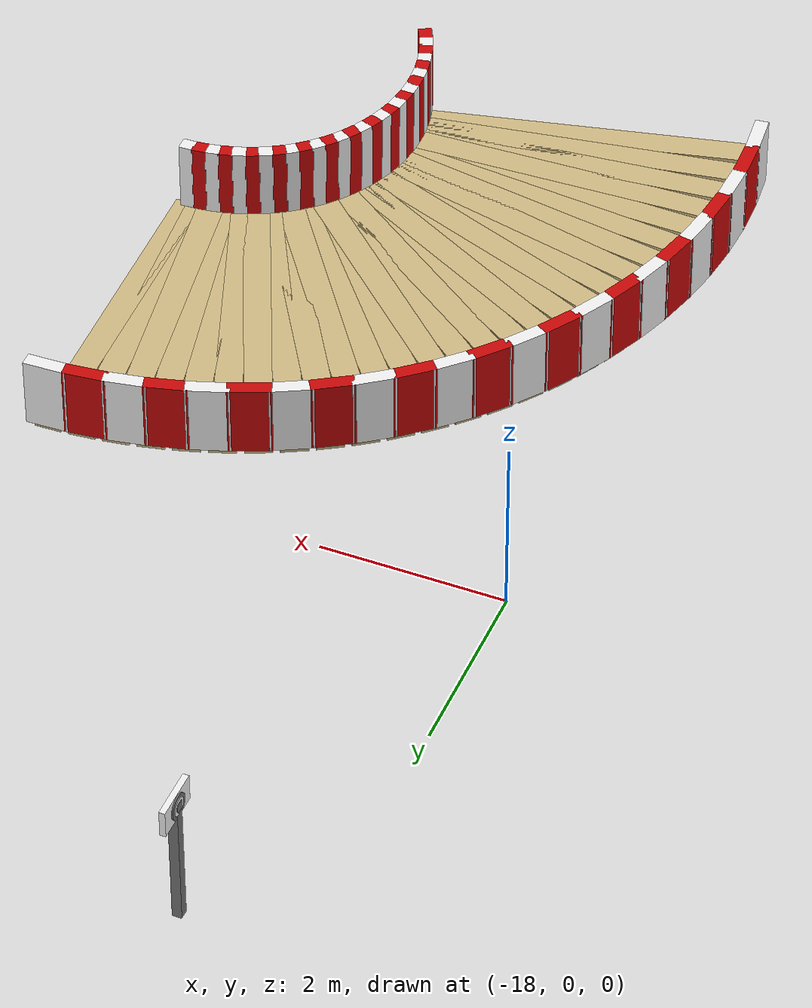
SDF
<sdf version="1.6">
 <world name="evrenos_teknofest_2026">
  <include><uri>model://sun</uri></include>
  <model name="main_course">
   <static>true</static>
   <link name="left_turn_road_20">
    <pose>-16.152000 -7.101500 -0.050000 0.000000 0.000000 -4.483315</pose>
    <collision name="left_turn_road_20_collision">
     <geometry><box><size>0.294500 3.750000 0.100000</size></box></geometry>
    </collision>
    <visual name="left_turn_road_20_visual">
     <geometry><box><size>0.294500 3.750000 0.100000</size></box></geometry>
     <material><ambient>0.82 0.73 0.52 1</ambient><diffuse>0.82 0.73 0.52 1</diffuse></material>
    </visual>
   </link>
   <link name="left_turn_road_21">
    <pose>-16.199875 -6.860875 -0.050000 0.000000 0.000000 -4.548764</pose>
    <collision name="left_turn_road_21_collision">
     <geometry><box><size>0.294500 3.750000 0.100000</size></box></geometry>
    </collision>
    <visual name="left_turn_road_21_visual">
     <geometry><box><size>0.294500 3.750000 0.100000</size></box></geometry>
     <material><ambient>0.82 0.73 0.52 1</ambient><diffuse>0.82 0.73 0.52 1</diffuse></material>
    </visual>
   </link>
   <link name="left_turn_road_22">
    <pose>-16.232000 -6.617625 -0.050000 0.000000 0.000000 -4.614214</pose>
    <collision name="left_turn_road_22_collision">
     <geometry><box><size>0.294500 3.750000 0.100000</size></box></geometry>
    </collision>
    <visual name="left_turn_road_22_visual">
     <geometry><box><size>0.294500 3.750000 0.100000</size></box></geometry>
     <material><ambient>0.82 0.73 0.52 1</ambient><diffuse>0.82 0.73 0.52 1</diffuse></material>
    </visual>
   </link>
   <link name="left_turn_road_23">
    <pose>-16.248000 -6.372750 -0.050000 0.000000 0.000000 -4.679664</pose>
    <collision name="left_turn_road_23_collision">
     <geometry><box><size>0.294500 3.750000 0.100000</size></box></geometry>
    </collision>
    <visual name="left_turn_road_23_visual">
     <geometry><box><size>0.294500 3.750000 0.100000</size></box></geometry>
     <material><ambient>0.82 0.73 0.52 1</ambient><diffuse>0.82 0.73 0.52 1</diffuse></material>
    </visual>
   </link>
   <link name="left_turn_road_24">
    <pose>-16.248000 -6.127250 -0.050000 0.000000 0.000000 -4.745114</pose>
    <collision name="left_turn_road_24_collision">
     <geometry><box><size>0.294500 3.750000 0.100000</size></box></geometry>
    </collision>
    <visual name="left_turn_road_24_visual">
     <geometry><box><size>0.294500 3.750000 0.100000</size></box></geometry>
     <material><ambient>0.82 0.73 0.52 1</ambient><diffuse>0.82 0.73 0.52 1</diffuse></material>
    </visual>
   </link>
   <link name="left_turn_road_25">
    <pose>-16.232000 -5.882375 -0.050000 0.000000 0.000000 -4.810564</pose>
    <collision name="left_turn_road_25_collision">
     <geometry><box><size>0.294500 3.750000 0.100000</size></box></geometry>
    </collision>
    <visual name="left_turn_road_25_visual">
     <geometry><box><size>0.294500 3.750000 0.100000</size></box></geometry>
     <material><ambient>0.82 0.73 0.52 1</ambient><diffuse>0.82 0.73 0.52 1</diffuse></material>
    </visual>
   </link>
   <link name="left_turn_road_26">
    <pose>-16.199875 -5.639125 -0.050000 0.000000 0.000000 -4.876014</pose>
    <collision name="left_turn_road_26_collision">
     <geometry><box><size>0.294500 3.750000 0.100000</size></box></geometry>
    </collision>
    <visual name="left_turn_road_26_visual">
     <geometry><box><size>0.294500 3.750000 0.100000</size></box></geometry>
     <material><ambient>0.82 0.73 0.52 1</ambient><diffuse>0.82 0.73 0.52 1</diffuse></material>
    </visual>
   </link>
   <link name="left_turn_road_27">
    <pose>-16.152000 -5.398500 -0.050000 0.000000 0.000000 -4.941463</pose>
    <collision name="left_turn_road_27_collision">
     <geometry><box><size>0.294500 3.750000 0.100000</size></box></geometry>
    </collision>
    <visual name="left_turn_road_27_visual">
     <geometry><box><size>0.294500 3.750000 0.100000</size></box></geometry>
     <material><ambient>0.82 0.73 0.52 1</ambient><diffuse>0.82 0.73 0.52 1</diffuse></material>
    </visual>
   </link>
   <link name="left_turn_road_28">
    <pose>-16.088500 -5.161375 -0.050000 0.000000 0.000000 -5.006913</pose>
    <collision name="left_turn_road_28_collision">
     <geometry><box><size>0.294500 3.750000 0.100000</size></box></geometry>
    </collision>
    <visual name="left_turn_road_28_visual">
     <geometry><box><size>0.294500 3.750000 0.100000</size></box></geometry>
     <material><ambient>0.82 0.73 0.52 1</ambient><diffuse>0.82 0.73 0.52 1</diffuse></material>
    </visual>
   </link>
   <link name="left_turn_road_29">
    <pose>-16.009625 -4.929000 -0.050000 0.000000 0.000000 -5.072363</pose>
    <collision name="left_turn_road_29_collision">
     <geometry><box><size>0.294500 3.750000 0.100000</size></box></geometry>
    </collision>
    <visual name="left_turn_road_29_visual">
     <geometry><box><size>0.294500 3.750000 0.100000</size></box></geometry>
     <material><ambient>0.82 0.73 0.52 1</ambient><diffuse>0.82 0.73 0.52 1</diffuse></material>
    </visual>
   </link>
   <link name="left_turn_road_30">
    <pose>-15.915750 -4.702375 -0.050000 0.000000 0.000000 -5.137813</pose>
    <collision name="left_turn_road_30_collision">
     <geometry><box><size>0.294500 3.750000 0.100000</size></box></geometry>
    </collision>
    <visual name="left_turn_road_30_visual">
     <geometry><box><size>0.294500 3.750000 0.100000</size></box></geometry>
     <material><ambient>0.82 0.73 0.52 1</ambient><diffuse>0.82 0.73 0.52 1</diffuse></material>
    </visual>
   </link>
   <link name="left_turn_road_31">
    <pose>-15.807250 -4.482250 -0.050000 0.000000 0.000000 -5.203263</pose>
    <collision name="left_turn_road_31_collision">
     <geometry><box><size>0.294500 3.750000 0.100000</size></box></geometry>
    </collision>
    <visual name="left_turn_road_31_visual">
     <geometry><box><size>0.294500 3.750000 0.100000</size></box></geometry>
     <material><ambient>0.82 0.73 0.52 1</ambient><diffuse>0.82 0.73 0.52 1</diffuse></material>
    </visual>
   </link>
   <link name="left_turn_road_32">
    <pose>-15.684500 -4.269750 -0.050000 0.000000 0.000000 -5.268713</pose>
    <collision name="left_turn_road_32_collision">
     <geometry><box><size>0.294500 3.750000 0.100000</size></box></geometry>
    </collision>
    <visual name="left_turn_road_32_visual">
     <geometry><box><size>0.294500 3.750000 0.100000</size></box></geometry>
     <material><ambient>0.82 0.73 0.52 1</ambient><diffuse>0.82 0.73 0.52 1</diffuse></material>
    </visual>
   </link>
   <link name="left_turn_road_33">
    <pose>-15.548125 -4.065750 -0.050000 0.000000 0.000000 -5.334163</pose>
    <collision name="left_turn_road_33_collision">
     <geometry><box><size>0.294500 3.750000 0.100000</size></box></geometry>
    </collision>
    <visual name="left_turn_road_33_visual">
     <geometry><box><size>0.294500 3.750000 0.100000</size></box></geometry>
     <material><ambient>0.82 0.73 0.52 1</ambient><diffuse>0.82 0.73 0.52 1</diffuse></material>
    </visual>
   </link>
   <link name="left_turn_road_34">
    <pose>-15.398750 -3.871000 -0.050000 0.000000 0.000000 -5.399612</pose>
    <collision name="left_turn_road_34_collision">
     <geometry><box><size>0.294500 3.750000 0.100000</size></box></geometry>
    </collision>
    <visual name="left_turn_road_34_visual">
     <geometry><box><size>0.294500 3.750000 0.100000</size></box></geometry>
     <material><ambient>0.82 0.73 0.52 1</ambient><diffuse>0.82 0.73 0.52 1</diffuse></material>
    </visual>
   </link>
   <link name="left_turn_road_35">
    <pose>-15.237000 -3.686500 -0.050000 0.000000 0.000000 -5.465062</pose>
    <collision name="left_turn_road_35_collision">
     <geometry><box><size>0.294500 3.750000 0.100000</size></box></geometry>
    </collision>
    <visual name="left_turn_road_35_visual">
     <geometry><box><size>0.294500 3.750000 0.100000</size></box></geometry>
     <material><ambient>0.82 0.73 0.52 1</ambient><diffuse>0.82 0.73 0.52 1</diffuse></material>
    </visual>
   </link>
   <link name="left_turn_road_36">
    <pose>-15.063500 -3.513000 -0.050000 0.000000 0.000000 -5.530512</pose>
    <collision name="left_turn_road_36_collision">
     <geometry><box><size>0.294500 3.750000 0.100000</size></box></geometry>
    </collision>
    <visual name="left_turn_road_36_visual">
     <geometry><box><size>0.294500 3.750000 0.100000</size></box></geometry>
     <material><ambient>0.82 0.73 0.52 1</ambient><diffuse>0.82 0.73 0.52 1</diffuse></material>
    </visual>
   </link>
   <link name="left_turn_road_37">
    <pose>-14.879000 -3.351250 -0.050000 0.000000 0.000000 -5.595962</pose>
    <collision name="left_turn_road_37_collision">
     <geometry><box><size>0.294500 3.750000 0.100000</size></box></geometry>
    </collision>
    <visual name="left_turn_road_37_visual">
     <geometry><box><size>0.294500 3.750000 0.100000</size></box></geometry>
     <material><ambient>0.82 0.73 0.52 1</ambient><diffuse>0.82 0.73 0.52 1</diffuse></material>
    </visual>
   </link>
   <link name="left_turn_road_38">
    <pose>-14.684250 -3.201875 -0.050000 0.000000 0.000000 -5.661412</pose>
    <collision name="left_turn_road_38_collision">
     <geometry><box><size>0.294500 3.750000 0.100000</size></box></geometry>
    </collision>
    <visual name="left_turn_road_38_visual">
     <geometry><box><size>0.294500 3.750000 0.100000</size></box></geometry>
     <material><ambient>0.82 0.73 0.52 1</ambient><diffuse>0.82 0.73 0.52 1</diffuse></material>
    </visual>
   </link>
   <link name="left_turn_road_39">
    <pose>-14.480250 -3.065500 -0.050000 0.000000 0.000000 -5.726862</pose>
    <collision name="left_turn_road_39_collision">
     <geometry><box><size>0.294500 3.750000 0.100000</size></box></geometry>
    </collision>
    <visual name="left_turn_road_39_visual">
     <geometry><box><size>0.294500 3.750000 0.100000</size></box></geometry>
     <material><ambient>0.82 0.73 0.52 1</ambient><diffuse>0.82 0.73 0.52 1</diffuse></material>
    </visual>
   </link>
   <link name="left_turn_road_40">
    <pose>-14.267750 -2.942750 -0.050000 0.000000 0.000000 -5.792311</pose>
    <collision name="left_turn_road_40_collision">
     <geometry><box><size>0.294500 3.750000 0.100000</size></box></geometry>
    </collision>
    <visual name="left_turn_road_40_visual">
     <geometry><box><size>0.294500 3.750000 0.100000</size></box></geometry>
     <material><ambient>0.82 0.73 0.52 1</ambient><diffuse>0.82 0.73 0.52 1</diffuse></material>
    </visual>
   </link>
   <link name="left_turn_road_41">
    <pose>-14.047625 -2.834250 -0.050000 0.000000 0.000000 -5.857761</pose>
    <collision name="left_turn_road_41_collision">
     <geometry><box><size>0.294500 3.750000 0.100000</size></box></geometry>
    </collision>
    <visual name="left_turn_road_41_visual">
     <geometry><box><size>0.294500 3.750000 0.100000</size></box></geometry>
     <material><ambient>0.82 0.73 0.52 1</ambient><diffuse>0.82 0.73 0.52 1</diffuse></material>
    </visual>
   </link>
   <link name="left_turn_road_42">
    <pose>-13.821000 -2.740375 -0.050000 0.000000 0.000000 -5.923211</pose>
    <collision name="left_turn_road_42_collision">
     <geometry><box><size>0.294500 3.750000 0.100000</size></box></geometry>
    </collision>
    <visual name="left_turn_road_42_visual">
     <geometry><box><size>0.294500 3.750000 0.100000</size></box></geometry>
     <material><ambient>0.82 0.73 0.52 1</ambient><diffuse>0.82 0.73 0.52 1</diffuse></material>
    </visual>
   </link>
   <link name="left_turn_road_43">
    <pose>-13.588625 -2.661500 -0.050000 0.000000 0.000000 -5.988661</pose>
    <collision name="left_turn_road_43_collision">
     <geometry><box><size>0.294500 3.750000 0.100000</size></box></geometry>
    </collision>
    <visual name="left_turn_road_43_visual">
     <geometry><box><size>0.294500 3.750000 0.100000</size></box></geometry>
     <material><ambient>0.82 0.73 0.52 1</ambient><diffuse>0.82 0.73 0.52 1</diffuse></material>
    </visual>
   </link>
   <link name="left_turn_road_44">
    <pose>-13.351500 -2.598000 -0.050000 0.000000 0.000000 -6.054111</pose>
    <collision name="left_turn_road_44_collision">
     <geometry><box><size>0.294500 3.750000 0.100000</size></box></geometry>
    </collision>
    <visual name="left_turn_road_44_visual">
     <geometry><box><size>0.294500 3.750000 0.100000</size></box></geometry>
     <material><ambient>0.82 0.73 0.52 1</ambient><diffuse>0.82 0.73 0.52 1</diffuse></material>
    </visual>
   </link>
   <link name="left_turn_road_45">
    <pose>-13.110875 -2.550125 -0.050000 0.000000 0.000000 -6.119561</pose>
    <collision name="left_turn_road_45_collision">
     <geometry><box><size>0.294500 3.750000 0.100000</size></box></geometry>
    </collision>
    <visual name="left_turn_road_45_visual">
     <geometry><box><size>0.294500 3.750000 0.100000</size></box></geometry>
     <material><ambient>0.82 0.73 0.52 1</ambient><diffuse>0.82 0.73 0.52 1</diffuse></material>
    </visual>
   </link>
   <link name="left_turn_road_46">
    <pose>-12.867625 -2.518000 -0.050000 0.000000 0.000000 -6.185011</pose>
    <collision name="left_turn_road_46_collision">
     <geometry><box><size>0.294500 3.750000 0.100000</size></box></geometry>
    </collision>
    <visual name="left_turn_road_46_visual">
     <geometry><box><size>0.294500 3.750000 0.100000</size></box></geometry>
     <material><ambient>0.82 0.73 0.52 1</ambient><diffuse>0.82 0.73 0.52 1</diffuse></material>
    </visual>
   </link>
   <link name="left_turn_road_47">
    <pose>-12.622750 -2.502000 -0.050000 0.000000 0.000000 -6.250460</pose>
    <collision name="left_turn_road_47_collision">
     <geometry><box><size>0.294500 3.750000 0.100000</size></box></geometry>
    </collision>
    <visual name="left_turn_road_47_visual">
     <geometry><box><size>0.294500 3.750000 0.100000</size></box></geometry>
     <material><ambient>0.82 0.73 0.52 1</ambient><diffuse>0.82 0.73 0.52 1</diffuse></material>
    </visual>
   </link>
   <link name="target_post">
    <pose>-16.750000 5.000000 0.750000 0.000000 0.000000 0.000000</pose>
    <collision name="target_post_collision">
     <geometry><box><size>0.100000 0.100000 1.500000</size></box></geometry>
    </collision>
    <visual name="target_post_visual">
     <geometry><box><size>0.100000 0.100000 1.500000</size></box></geometry>
     <material><ambient>0.45 0.45 0.45 1</ambient><diffuse>0.45 0.45 0.45 1</diffuse></material>
    </visual>
   </link>
   <link name="target_panel">
    <pose>-16.750000 5.000000 1.450000 0.000000 0.000000 0.000000</pose>
    <collision name="target_panel_collision">
     <geometry><box><size>0.062500 0.525000 0.297000</size></box></geometry>
    </collision>
    <visual name="target_panel_visual">
     <geometry><box><size>0.062500 0.525000 0.297000</size></box></geometry>
     <material><ambient>0.95 0.95 0.95 1</ambient><diffuse>0.95 0.95 0.95 1</diffuse></material>
    </visual>
   </link>
   <link name="target_ring_0">
    <pose>-16.788750 5.000000 1.450000 0.000000 1.570796 0.000000</pose>
    <visual name="target_ring_0_visual">
     <geometry><cylinder><radius>0.135000</radius><length>0.015000</length></cylinder></geometry>
     <material><ambient>0.45 0.45 0.45 1</ambient><diffuse>0.45 0.45 0.45 1</diffuse></material>
    </visual>
   </link>
   <link name="target_ring_1">
    <pose>-16.792500 5.000000 1.450000 0.000000 1.570796 0.000000</pose>
    <visual name="target_ring_1_visual">
     <geometry><cylinder><radius>0.095000</radius><length>0.015000</length></cylinder></geometry>
     <material><ambient>0.95 0.95 0.95 1</ambient><diffuse>0.95 0.95 0.95 1</diffuse></material>
    </visual>
   </link>
   <link name="target_ring_2">
    <pose>-16.796250 5.000000 1.450000 0.000000 1.570796 0.000000</pose>
    <visual name="target_ring_2_visual">
     <geometry><cylinder><radius>0.055000</radius><length>0.015000</length></cylinder></geometry>
     <material><ambient>0.45 0.45 0.45 1</ambient><diffuse>0.45 0.45 0.45 1</diffuse></material>
    </visual>
   </link>
   <link name="left_turn_bar_0_14">
    <pose>-14.157750 -7.126125 0.400000 0.000000 0.000000 -4.226190</pose>
    <collision name="left_turn_bar_0_14_collision">
     <geometry><box><size>0.154250 0.150000 0.800000</size></box></geometry>
    </collision>
    <visual name="left_turn_bar_0_14_visual">
     <geometry><box><size>0.154250 0.150000 0.800000</size></box></geometry>
     <material><ambient>0.8 0.03 0.03 1</ambient><diffuse>0.8 0.03 0.03 1</diffuse></material>
    </visual>
   </link>
   <link name="left_turn_bar_0_15">
    <pose>-14.218500 -6.999750 0.400000 0.000000 0.000000 -4.300990</pose>
    <collision name="left_turn_bar_0_15_collision">
     <geometry><box><size>0.154250 0.150000 0.800000</size></box></geometry>
    </collision>
    <visual name="left_turn_bar_0_15_visual">
     <geometry><box><size>0.154250 0.150000 0.800000</size></box></geometry>
     <material><ambient>0.95 0.95 0.95 1</ambient><diffuse>0.95 0.95 0.95 1</diffuse></material>
    </visual>
   </link>
   <link name="left_turn_bar_0_16">
    <pose>-14.269750 -6.869250 0.400000 0.000000 0.000000 -4.375790</pose>
    <collision name="left_turn_bar_0_16_collision">
     <geometry><box><size>0.154250 0.150000 0.800000</size></box></geometry>
    </collision>
    <visual name="left_turn_bar_0_16_visual">
     <geometry><box><size>0.154250 0.150000 0.800000</size></box></geometry>
     <material><ambient>0.8 0.03 0.03 1</ambient><diffuse>0.8 0.03 0.03 1</diffuse></material>
    </visual>
   </link>
   <link name="left_turn_bar_0_17">
    <pose>-14.311125 -6.735250 0.400000 0.000000 0.000000 -4.450590</pose>
    <collision name="left_turn_bar_0_17_collision">
     <geometry><box><size>0.154250 0.150000 0.800000</size></box></geometry>
    </collision>
    <visual name="left_turn_bar_0_17_visual">
     <geometry><box><size>0.154250 0.150000 0.800000</size></box></geometry>
     <material><ambient>0.95 0.95 0.95 1</ambient><diffuse>0.95 0.95 0.95 1</diffuse></material>
    </visual>
   </link>
   <link name="left_turn_bar_0_18">
    <pose>-14.342250 -6.598625 0.400000 0.000000 0.000000 -4.525389</pose>
    <collision name="left_turn_bar_0_18_collision">
     <geometry><box><size>0.154250 0.150000 0.800000</size></box></geometry>
    </collision>
    <visual name="left_turn_bar_0_18_visual">
     <geometry><box><size>0.154250 0.150000 0.800000</size></box></geometry>
     <material><ambient>0.8 0.03 0.03 1</ambient><diffuse>0.8 0.03 0.03 1</diffuse></material>
    </visual>
   </link>
   <link name="left_turn_bar_0_19">
    <pose>-14.363250 -6.459875 0.400000 0.000000 0.000000 -4.600189</pose>
    <collision name="left_turn_bar_0_19_collision">
     <geometry><box><size>0.154250 0.150000 0.800000</size></box></geometry>
    </collision>
    <visual name="left_turn_bar_0_19_visual">
     <geometry><box><size>0.154250 0.150000 0.800000</size></box></geometry>
     <material><ambient>0.95 0.95 0.95 1</ambient><diffuse>0.95 0.95 0.95 1</diffuse></material>
    </visual>
   </link>
   <link name="left_turn_bar_0_20">
    <pose>-14.373750 -6.320125 0.400000 0.000000 0.000000 -4.674989</pose>
    <collision name="left_turn_bar_0_20_collision">
     <geometry><box><size>0.154250 0.150000 0.800000</size></box></geometry>
    </collision>
    <visual name="left_turn_bar_0_20_visual">
     <geometry><box><size>0.154250 0.150000 0.800000</size></box></geometry>
     <material><ambient>0.8 0.03 0.03 1</ambient><diffuse>0.8 0.03 0.03 1</diffuse></material>
    </visual>
   </link>
   <link name="left_turn_bar_0_21">
    <pose>-14.373750 -6.179875 0.400000 0.000000 0.000000 -4.749789</pose>
    <collision name="left_turn_bar_0_21_collision">
     <geometry><box><size>0.154250 0.150000 0.800000</size></box></geometry>
    </collision>
    <visual name="left_turn_bar_0_21_visual">
     <geometry><box><size>0.154250 0.150000 0.800000</size></box></geometry>
     <material><ambient>0.95 0.95 0.95 1</ambient><diffuse>0.95 0.95 0.95 1</diffuse></material>
    </visual>
   </link>
   <link name="left_turn_bar_0_22">
    <pose>-14.363250 -6.040125 0.400000 0.000000 0.000000 -4.824589</pose>
    <collision name="left_turn_bar_0_22_collision">
     <geometry><box><size>0.154250 0.150000 0.800000</size></box></geometry>
    </collision>
    <visual name="left_turn_bar_0_22_visual">
     <geometry><box><size>0.154250 0.150000 0.800000</size></box></geometry>
     <material><ambient>0.8 0.03 0.03 1</ambient><diffuse>0.8 0.03 0.03 1</diffuse></material>
    </visual>
   </link>
   <link name="left_turn_bar_0_23">
    <pose>-14.342250 -5.901375 0.400000 0.000000 0.000000 -4.899389</pose>
    <collision name="left_turn_bar_0_23_collision">
     <geometry><box><size>0.154250 0.150000 0.800000</size></box></geometry>
    </collision>
    <visual name="left_turn_bar_0_23_visual">
     <geometry><box><size>0.154250 0.150000 0.800000</size></box></geometry>
     <material><ambient>0.95 0.95 0.95 1</ambient><diffuse>0.95 0.95 0.95 1</diffuse></material>
    </visual>
   </link>
   <link name="left_turn_bar_0_24">
    <pose>-14.311125 -5.764750 0.400000 0.000000 0.000000 -4.974188</pose>
    <collision name="left_turn_bar_0_24_collision">
     <geometry><box><size>0.154250 0.150000 0.800000</size></box></geometry>
    </collision>
    <visual name="left_turn_bar_0_24_visual">
     <geometry><box><size>0.154250 0.150000 0.800000</size></box></geometry>
     <material><ambient>0.8 0.03 0.03 1</ambient><diffuse>0.8 0.03 0.03 1</diffuse></material>
    </visual>
   </link>
   <link name="left_turn_bar_0_25">
    <pose>-14.269750 -5.630750 0.400000 0.000000 0.000000 -5.048988</pose>
    <collision name="left_turn_bar_0_25_collision">
     <geometry><box><size>0.154250 0.150000 0.800000</size></box></geometry>
    </collision>
    <visual name="left_turn_bar_0_25_visual">
     <geometry><box><size>0.154250 0.150000 0.800000</size></box></geometry>
     <material><ambient>0.95 0.95 0.95 1</ambient><diffuse>0.95 0.95 0.95 1</diffuse></material>
    </visual>
   </link>
   <link name="left_turn_bar_0_26">
    <pose>-14.218500 -5.500250 0.400000 0.000000 0.000000 -5.123788</pose>
    <collision name="left_turn_bar_0_26_collision">
     <geometry><box><size>0.154250 0.150000 0.800000</size></box></geometry>
    </collision>
    <visual name="left_turn_bar_0_26_visual">
     <geometry><box><size>0.154250 0.150000 0.800000</size></box></geometry>
     <material><ambient>0.8 0.03 0.03 1</ambient><diffuse>0.8 0.03 0.03 1</diffuse></material>
    </visual>
   </link>
   <link name="left_turn_bar_0_27">
    <pose>-14.157750 -5.373875 0.400000 0.000000 0.000000 -5.198588</pose>
    <collision name="left_turn_bar_0_27_collision">
     <geometry><box><size>0.154250 0.150000 0.800000</size></box></geometry>
    </collision>
    <visual name="left_turn_bar_0_27_visual">
     <geometry><box><size>0.154250 0.150000 0.800000</size></box></geometry>
     <material><ambient>0.95 0.95 0.95 1</ambient><diffuse>0.95 0.95 0.95 1</diffuse></material>
    </visual>
   </link>
   <link name="left_turn_bar_0_28">
    <pose>-14.087625 -5.252500 0.400000 0.000000 0.000000 -5.273388</pose>
    <collision name="left_turn_bar_0_28_collision">
     <geometry><box><size>0.154250 0.150000 0.800000</size></box></geometry>
    </collision>
    <visual name="left_turn_bar_0_28_visual">
     <geometry><box><size>0.154250 0.150000 0.800000</size></box></geometry>
     <material><ambient>0.8 0.03 0.03 1</ambient><diffuse>0.8 0.03 0.03 1</diffuse></material>
    </visual>
   </link>
   <link name="left_turn_bar_0_29">
    <pose>-14.008625 -5.136625 0.400000 0.000000 0.000000 -5.348187</pose>
    <collision name="left_turn_bar_0_29_collision">
     <geometry><box><size>0.154250 0.150000 0.800000</size></box></geometry>
    </collision>
    <visual name="left_turn_bar_0_29_visual">
     <geometry><box><size>0.154250 0.150000 0.800000</size></box></geometry>
     <material><ambient>0.95 0.95 0.95 1</ambient><diffuse>0.95 0.95 0.95 1</diffuse></material>
    </visual>
   </link>
   <link name="left_turn_bar_0_30">
    <pose>-13.921250 -5.027000 0.400000 0.000000 0.000000 -5.422987</pose>
    <collision name="left_turn_bar_0_30_collision">
     <geometry><box><size>0.154250 0.150000 0.800000</size></box></geometry>
    </collision>
    <visual name="left_turn_bar_0_30_visual">
     <geometry><box><size>0.154250 0.150000 0.800000</size></box></geometry>
     <material><ambient>0.8 0.03 0.03 1</ambient><diffuse>0.8 0.03 0.03 1</diffuse></material>
    </visual>
   </link>
   <link name="left_turn_bar_0_31">
    <pose>-13.825875 -4.924125 0.400000 0.000000 0.000000 -5.497787</pose>
    <collision name="left_turn_bar_0_31_collision">
     <geometry><box><size>0.154250 0.150000 0.800000</size></box></geometry>
    </collision>
    <visual name="left_turn_bar_0_31_visual">
     <geometry><box><size>0.154250 0.150000 0.800000</size></box></geometry>
     <material><ambient>0.95 0.95 0.95 1</ambient><diffuse>0.95 0.95 0.95 1</diffuse></material>
    </visual>
   </link>
   <link name="left_turn_bar_0_32">
    <pose>-13.723000 -4.828750 0.400000 0.000000 0.000000 -5.572587</pose>
    <collision name="left_turn_bar_0_32_collision">
     <geometry><box><size>0.154250 0.150000 0.800000</size></box></geometry>
    </collision>
    <visual name="left_turn_bar_0_32_visual">
     <geometry><box><size>0.154250 0.150000 0.800000</size></box></geometry>
     <material><ambient>0.8 0.03 0.03 1</ambient><diffuse>0.8 0.03 0.03 1</diffuse></material>
    </visual>
   </link>
   <link name="left_turn_bar_0_33">
    <pose>-13.613375 -4.741375 0.400000 0.000000 0.000000 -5.647387</pose>
    <collision name="left_turn_bar_0_33_collision">
     <geometry><box><size>0.154250 0.150000 0.800000</size></box></geometry>
    </collision>
    <visual name="left_turn_bar_0_33_visual">
     <geometry><box><size>0.154250 0.150000 0.800000</size></box></geometry>
     <material><ambient>0.95 0.95 0.95 1</ambient><diffuse>0.95 0.95 0.95 1</diffuse></material>
    </visual>
   </link>
   <link name="left_turn_bar_0_34">
    <pose>-13.497500 -4.662375 0.400000 0.000000 0.000000 -5.722187</pose>
    <collision name="left_turn_bar_0_34_collision">
     <geometry><box><size>0.154250 0.150000 0.800000</size></box></geometry>
    </collision>
    <visual name="left_turn_bar_0_34_visual">
     <geometry><box><size>0.154250 0.150000 0.800000</size></box></geometry>
     <material><ambient>0.8 0.03 0.03 1</ambient><diffuse>0.8 0.03 0.03 1</diffuse></material>
    </visual>
   </link>
   <link name="left_turn_bar_0_35">
    <pose>-13.376125 -4.592250 0.400000 0.000000 0.000000 -5.796986</pose>
    <collision name="left_turn_bar_0_35_collision">
     <geometry><box><size>0.154250 0.150000 0.800000</size></box></geometry>
    </collision>
    <visual name="left_turn_bar_0_35_visual">
     <geometry><box><size>0.154250 0.150000 0.800000</size></box></geometry>
     <material><ambient>0.95 0.95 0.95 1</ambient><diffuse>0.95 0.95 0.95 1</diffuse></material>
    </visual>
   </link>
   <link name="left_turn_bar_0_36">
    <pose>-13.249750 -4.531500 0.400000 0.000000 0.000000 -5.871786</pose>
    <collision name="left_turn_bar_0_36_collision">
     <geometry><box><size>0.154250 0.150000 0.800000</size></box></geometry>
    </collision>
    <visual name="left_turn_bar_0_36_visual">
     <geometry><box><size>0.154250 0.150000 0.800000</size></box></geometry>
     <material><ambient>0.8 0.03 0.03 1</ambient><diffuse>0.8 0.03 0.03 1</diffuse></material>
    </visual>
   </link>
   <link name="left_turn_bar_0_37">
    <pose>-13.119250 -4.480250 0.400000 0.000000 0.000000 -5.946586</pose>
    <collision name="left_turn_bar_0_37_collision">
     <geometry><box><size>0.154250 0.150000 0.800000</size></box></geometry>
    </collision>
    <visual name="left_turn_bar_0_37_visual">
     <geometry><box><size>0.154250 0.150000 0.800000</size></box></geometry>
     <material><ambient>0.95 0.95 0.95 1</ambient><diffuse>0.95 0.95 0.95 1</diffuse></material>
    </visual>
   </link>
   <link name="left_turn_bar_0_38">
    <pose>-12.985250 -4.438875 0.400000 0.000000 0.000000 -6.021386</pose>
    <collision name="left_turn_bar_0_38_collision">
     <geometry><box><size>0.154250 0.150000 0.800000</size></box></geometry>
    </collision>
    <visual name="left_turn_bar_0_38_visual">
     <geometry><box><size>0.154250 0.150000 0.800000</size></box></geometry>
     <material><ambient>0.8 0.03 0.03 1</ambient><diffuse>0.8 0.03 0.03 1</diffuse></material>
    </visual>
   </link>
   <link name="left_turn_bar_0_39">
    <pose>-12.848625 -4.407750 0.400000 0.000000 0.000000 -6.096186</pose>
    <collision name="left_turn_bar_0_39_collision">
     <geometry><box><size>0.154250 0.150000 0.800000</size></box></geometry>
    </collision>
    <visual name="left_turn_bar_0_39_visual">
     <geometry><box><size>0.154250 0.150000 0.800000</size></box></geometry>
     <material><ambient>0.95 0.95 0.95 1</ambient><diffuse>0.95 0.95 0.95 1</diffuse></material>
    </visual>
   </link>
   <link name="left_turn_bar_0_40">
    <pose>-12.709875 -4.386750 0.400000 0.000000 0.000000 -6.170986</pose>
    <collision name="left_turn_bar_0_40_collision">
     <geometry><box><size>0.154250 0.150000 0.800000</size></box></geometry>
    </collision>
    <visual name="left_turn_bar_0_40_visual">
     <geometry><box><size>0.154250 0.150000 0.800000</size></box></geometry>
     <material><ambient>0.8 0.03 0.03 1</ambient><diffuse>0.8 0.03 0.03 1</diffuse></material>
    </visual>
   </link>
   <link name="left_turn_bar_0_41">
    <pose>-12.570125 -4.376250 0.400000 0.000000 0.000000 -6.245785</pose>
    <collision name="left_turn_bar_0_41_collision">
     <geometry><box><size>0.154250 0.150000 0.800000</size></box></geometry>
    </collision>
    <visual name="left_turn_bar_0_41_visual">
     <geometry><box><size>0.154250 0.150000 0.800000</size></box></geometry>
     <material><ambient>0.95 0.95 0.95 1</ambient><diffuse>0.95 0.95 0.95 1</diffuse></material>
    </visual>
   </link>
   <link name="left_turn_bar_1_19">
    <pose>-18.089625 -6.879750 0.400000 0.000000 0.000000 -4.600189</pose>
    <collision name="left_turn_bar_1_19_collision">
     <geometry><box><size>0.462875 0.150000 0.800000</size></box></geometry>
    </collision>
    <visual name="left_turn_bar_1_19_visual">
     <geometry><box><size>0.462875 0.150000 0.800000</size></box></geometry>
     <material><ambient>0.95 0.95 0.95 1</ambient><diffuse>0.95 0.95 0.95 1</diffuse></material>
    </visual>
   </link>
   <link name="left_turn_bar_1_20">
    <pose>-18.121125 -6.460375 0.400000 0.000000 0.000000 -4.674989</pose>
    <collision name="left_turn_bar_1_20_collision">
     <geometry><box><size>0.462875 0.150000 0.800000</size></box></geometry>
    </collision>
    <visual name="left_turn_bar_1_20_visual">
     <geometry><box><size>0.462875 0.150000 0.800000</size></box></geometry>
     <material><ambient>0.8 0.03 0.03 1</ambient><diffuse>0.8 0.03 0.03 1</diffuse></material>
    </visual>
   </link>
   <link name="left_turn_bar_1_21">
    <pose>-18.121125 -6.039625 0.400000 0.000000 0.000000 -4.749789</pose>
    <collision name="left_turn_bar_1_21_collision">
     <geometry><box><size>0.462875 0.150000 0.800000</size></box></geometry>
    </collision>
    <visual name="left_turn_bar_1_21_visual">
     <geometry><box><size>0.462875 0.150000 0.800000</size></box></geometry>
     <material><ambient>0.95 0.95 0.95 1</ambient><diffuse>0.95 0.95 0.95 1</diffuse></material>
    </visual>
   </link>
   <link name="left_turn_bar_1_22">
    <pose>-18.089625 -5.620250 0.400000 0.000000 0.000000 -4.824589</pose>
    <collision name="left_turn_bar_1_22_collision">
     <geometry><box><size>0.462875 0.150000 0.800000</size></box></geometry>
    </collision>
    <visual name="left_turn_bar_1_22_visual">
     <geometry><box><size>0.462875 0.150000 0.800000</size></box></geometry>
     <material><ambient>0.8 0.03 0.03 1</ambient><diffuse>0.8 0.03 0.03 1</diffuse></material>
    </visual>
   </link>
   <link name="left_turn_bar_1_23">
    <pose>-18.026875 -5.204250 0.400000 0.000000 0.000000 -4.899389</pose>
    <collision name="left_turn_bar_1_23_collision">
     <geometry><box><size>0.462875 0.150000 0.800000</size></box></geometry>
    </collision>
    <visual name="left_turn_bar_1_23_visual">
     <geometry><box><size>0.462875 0.150000 0.800000</size></box></geometry>
     <material><ambient>0.95 0.95 0.95 1</ambient><diffuse>0.95 0.95 0.95 1</diffuse></material>
    </visual>
   </link>
   <link name="left_turn_bar_1_24">
    <pose>-17.933375 -4.794125 0.400000 0.000000 0.000000 -4.974188</pose>
    <collision name="left_turn_bar_1_24_collision">
     <geometry><box><size>0.462875 0.150000 0.800000</size></box></geometry>
    </collision>
    <visual name="left_turn_bar_1_24_visual">
     <geometry><box><size>0.462875 0.150000 0.800000</size></box></geometry>
     <material><ambient>0.8 0.03 0.03 1</ambient><diffuse>0.8 0.03 0.03 1</diffuse></material>
    </visual>
   </link>
   <link name="left_turn_bar_1_25">
    <pose>-17.809375 -4.392125 0.400000 0.000000 0.000000 -5.048988</pose>
    <collision name="left_turn_bar_1_25_collision">
     <geometry><box><size>0.462875 0.150000 0.800000</size></box></geometry>
    </collision>
    <visual name="left_turn_bar_1_25_visual">
     <geometry><box><size>0.462875 0.150000 0.800000</size></box></geometry>
     <material><ambient>0.95 0.95 0.95 1</ambient><diffuse>0.95 0.95 0.95 1</diffuse></material>
    </visual>
   </link>
   <link name="left_turn_bar_1_26">
    <pose>-17.655625 -4.000625 0.400000 0.000000 0.000000 -5.123788</pose>
    <collision name="left_turn_bar_1_26_collision">
     <geometry><box><size>0.462875 0.150000 0.800000</size></box></geometry>
    </collision>
    <visual name="left_turn_bar_1_26_visual">
     <geometry><box><size>0.462875 0.150000 0.800000</size></box></geometry>
     <material><ambient>0.8 0.03 0.03 1</ambient><diffuse>0.8 0.03 0.03 1</diffuse></material>
    </visual>
   </link>
   <link name="left_turn_bar_1_27">
    <pose>-17.473125 -3.621625 0.400000 0.000000 0.000000 -5.198588</pose>
    <collision name="left_turn_bar_1_27_collision">
     <geometry><box><size>0.462875 0.150000 0.800000</size></box></geometry>
    </collision>
    <visual name="left_turn_bar_1_27_visual">
     <geometry><box><size>0.462875 0.150000 0.800000</size></box></geometry>
     <material><ambient>0.95 0.95 0.95 1</ambient><diffuse>0.95 0.95 0.95 1</diffuse></material>
    </visual>
   </link>
   <link name="left_turn_bar_1_28">
    <pose>-17.262875 -3.257375 0.400000 0.000000 0.000000 -5.273388</pose>
    <collision name="left_turn_bar_1_28_collision">
     <geometry><box><size>0.462875 0.150000 0.800000</size></box></geometry>
    </collision>
    <visual name="left_turn_bar_1_28_visual">
     <geometry><box><size>0.462875 0.150000 0.800000</size></box></geometry>
     <material><ambient>0.8 0.03 0.03 1</ambient><diffuse>0.8 0.03 0.03 1</diffuse></material>
    </visual>
   </link>
   <link name="left_turn_bar_1_29">
    <pose>-17.025875 -2.909750 0.400000 0.000000 0.000000 -5.348187</pose>
    <collision name="left_turn_bar_1_29_collision">
     <geometry><box><size>0.462875 0.150000 0.800000</size></box></geometry>
    </collision>
    <visual name="left_turn_bar_1_29_visual">
     <geometry><box><size>0.462875 0.150000 0.800000</size></box></geometry>
     <material><ambient>0.95 0.95 0.95 1</ambient><diffuse>0.95 0.95 0.95 1</diffuse></material>
    </visual>
   </link>
   <link name="left_turn_bar_1_30">
    <pose>-16.763625 -2.580875 0.400000 0.000000 0.000000 -5.422987</pose>
    <collision name="left_turn_bar_1_30_collision">
     <geometry><box><size>0.462875 0.150000 0.800000</size></box></geometry>
    </collision>
    <visual name="left_turn_bar_1_30_visual">
     <geometry><box><size>0.462875 0.150000 0.800000</size></box></geometry>
     <material><ambient>0.8 0.03 0.03 1</ambient><diffuse>0.8 0.03 0.03 1</diffuse></material>
    </visual>
   </link>
   <link name="left_turn_bar_1_31">
    <pose>-16.477500 -2.272500 0.400000 0.000000 0.000000 -5.497787</pose>
    <collision name="left_turn_bar_1_31_collision">
     <geometry><box><size>0.462875 0.150000 0.800000</size></box></geometry>
    </collision>
    <visual name="left_turn_bar_1_31_visual">
     <geometry><box><size>0.462875 0.150000 0.800000</size></box></geometry>
     <material><ambient>0.95 0.95 0.95 1</ambient><diffuse>0.95 0.95 0.95 1</diffuse></material>
    </visual>
   </link>
   <link name="left_turn_bar_1_32">
    <pose>-16.169125 -1.986375 0.400000 0.000000 0.000000 -5.572587</pose>
    <collision name="left_turn_bar_1_32_collision">
     <geometry><box><size>0.462875 0.150000 0.800000</size></box></geometry>
    </collision>
    <visual name="left_turn_bar_1_32_visual">
     <geometry><box><size>0.462875 0.150000 0.800000</size></box></geometry>
     <material><ambient>0.8 0.03 0.03 1</ambient><diffuse>0.8 0.03 0.03 1</diffuse></material>
    </visual>
   </link>
   <link name="left_turn_bar_1_33">
    <pose>-15.840250 -1.724125 0.400000 0.000000 0.000000 -5.647387</pose>
    <collision name="left_turn_bar_1_33_collision">
     <geometry><box><size>0.462875 0.150000 0.800000</size></box></geometry>
    </collision>
    <visual name="left_turn_bar_1_33_visual">
     <geometry><box><size>0.462875 0.150000 0.800000</size></box></geometry>
     <material><ambient>0.95 0.95 0.95 1</ambient><diffuse>0.95 0.95 0.95 1</diffuse></material>
    </visual>
   </link>
   <link name="left_turn_bar_1_34">
    <pose>-15.492625 -1.487125 0.400000 0.000000 0.000000 -5.722187</pose>
    <collision name="left_turn_bar_1_34_collision">
     <geometry><box><size>0.462875 0.150000 0.800000</size></box></geometry>
    </collision>
    <visual name="left_turn_bar_1_34_visual">
     <geometry><box><size>0.462875 0.150000 0.800000</size></box></geometry>
     <material><ambient>0.8 0.03 0.03 1</ambient><diffuse>0.8 0.03 0.03 1</diffuse></material>
    </visual>
   </link>
   <link name="left_turn_bar_1_35">
    <pose>-15.128375 -1.276875 0.400000 0.000000 0.000000 -5.796986</pose>
    <collision name="left_turn_bar_1_35_collision">
     <geometry><box><size>0.462875 0.150000 0.800000</size></box></geometry>
    </collision>
    <visual name="left_turn_bar_1_35_visual">
     <geometry><box><size>0.462875 0.150000 0.800000</size></box></geometry>
     <material><ambient>0.95 0.95 0.95 1</ambient><diffuse>0.95 0.95 0.95 1</diffuse></material>
    </visual>
   </link>
   <link name="left_turn_bar_1_36">
    <pose>-14.749375 -1.094375 0.400000 0.000000 0.000000 -5.871786</pose>
    <collision name="left_turn_bar_1_36_collision">
     <geometry><box><size>0.462875 0.150000 0.800000</size></box></geometry>
    </collision>
    <visual name="left_turn_bar_1_36_visual">
     <geometry><box><size>0.462875 0.150000 0.800000</size></box></geometry>
     <material><ambient>0.8 0.03 0.03 1</ambient><diffuse>0.8 0.03 0.03 1</diffuse></material>
    </visual>
   </link>
   <link name="left_turn_bar_1_37">
    <pose>-14.357875 -0.940625 0.400000 0.000000 0.000000 -5.946586</pose>
    <collision name="left_turn_bar_1_37_collision">
     <geometry><box><size>0.462875 0.150000 0.800000</size></box></geometry>
    </collision>
    <visual name="left_turn_bar_1_37_visual">
     <geometry><box><size>0.462875 0.150000 0.800000</size></box></geometry>
     <material><ambient>0.95 0.95 0.95 1</ambient><diffuse>0.95 0.95 0.95 1</diffuse></material>
    </visual>
   </link>
   <link name="left_turn_bar_1_38">
    <pose>-13.955875 -0.816625 0.400000 0.000000 0.000000 -6.021386</pose>
    <collision name="left_turn_bar_1_38_collision">
     <geometry><box><size>0.462875 0.150000 0.800000</size></box></geometry>
    </collision>
    <visual name="left_turn_bar_1_38_visual">
     <geometry><box><size>0.462875 0.150000 0.800000</size></box></geometry>
     <material><ambient>0.8 0.03 0.03 1</ambient><diffuse>0.8 0.03 0.03 1</diffuse></material>
    </visual>
   </link>
   <link name="left_turn_bar_1_39">
    <pose>-13.545750 -0.723125 0.400000 0.000000 0.000000 -6.096186</pose>
    <collision name="left_turn_bar_1_39_collision">
     <geometry><box><size>0.462875 0.150000 0.800000</size></box></geometry>
    </collision>
    <visual name="left_turn_bar_1_39_visual">
     <geometry><box><size>0.462875 0.150000 0.800000</size></box></geometry>
     <material><ambient>0.95 0.95 0.95 1</ambient><diffuse>0.95 0.95 0.95 1</diffuse></material>
    </visual>
   </link>
   <link name="left_turn_bar_1_40">
    <pose>-13.129750 -0.660375 0.400000 0.000000 0.000000 -6.170986</pose>
    <collision name="left_turn_bar_1_40_collision">
     <geometry><box><size>0.462875 0.150000 0.800000</size></box></geometry>
    </collision>
    <visual name="left_turn_bar_1_40_visual">
     <geometry><box><size>0.462875 0.150000 0.800000</size></box></geometry>
     <material><ambient>0.8 0.03 0.03 1</ambient><diffuse>0.8 0.03 0.03 1</diffuse></material>
    </visual>
   </link>
   <link name="left_turn_bar_1_41">
    <pose>-12.710375 -0.628875 0.400000 0.000000 0.000000 -6.245785</pose>
    <collision name="left_turn_bar_1_41_collision">
     <geometry><box><size>0.462875 0.150000 0.800000</size></box></geometry>
    </collision>
    <visual name="left_turn_bar_1_41_visual">
     <geometry><box><size>0.462875 0.150000 0.800000</size></box></geometry>
     <material><ambient>0.95 0.95 0.95 1</ambient><diffuse>0.95 0.95 0.95 1</diffuse></material>
    </visual>
   </link>
  </model>
 </world>
</sdf>
